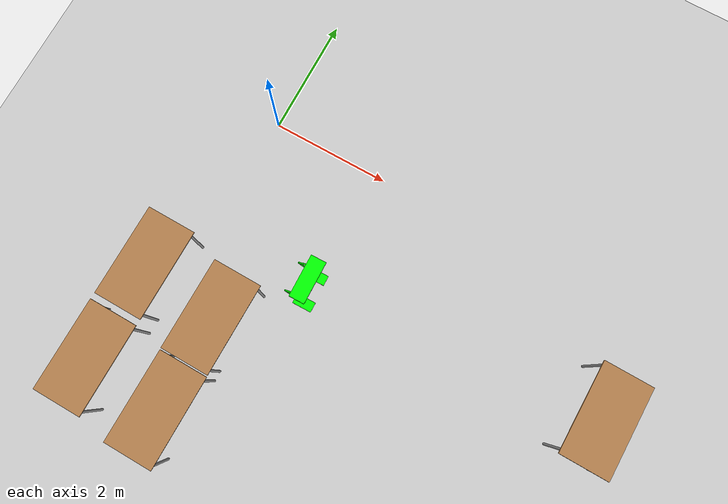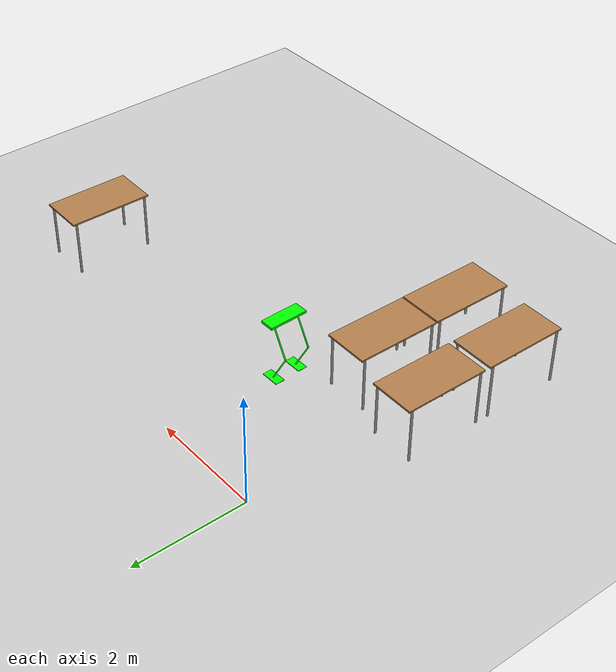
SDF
<sdf version="1.7">
 <world name="default">
  <model name="table_clone_0">
   <static>1</static>
   <link name="link">
    <collision name="surface">
     <pose>0 0 1 0 -0 0</pose>
     <geometry><box><size>1.5 0.8 0.03</size></box></geometry>
     <surface><friction><ode><mu>0.6</mu><mu2>0.6</mu2></ode></friction></surface>
    </collision>
    <visual name="visual1">
     <pose>0 0 1 0 -0 0</pose>
     <geometry><box><size>1.5 0.8 0.03</size></box></geometry>
     <material>
      <script><uri>file://media/materials/scripts/gazebo.material</uri><name>Gazebo/Wood</name></script>
     </material>
    </visual>
    <collision name="front_left_leg">
     <pose>0.68 0.38 0.5 0 -0 0</pose>
     <geometry><cylinder><radius>0.02</radius><length>1</length></cylinder></geometry>
    </collision>
    <visual name="front_left_leg">
     <pose>0.68 0.38 0.5 0 -0 0</pose>
     <geometry><cylinder><radius>0.02</radius><length>1</length></cylinder></geometry>
     <material>
      <script><uri>file://media/materials/scripts/gazebo.material</uri><name>Gazebo/Grey</name></script>
     </material>
    </visual>
    <collision name="front_right_leg">
     <pose>0.68 -0.38 0.5 0 -0 0</pose>
     <geometry><cylinder><radius>0.02</radius><length>1</length></cylinder></geometry>
    </collision>
    <visual name="front_right_leg">
     <pose>0.68 -0.38 0.5 0 -0 0</pose>
     <geometry><cylinder><radius>0.02</radius><length>1</length></cylinder></geometry>
     <material>
      <script><uri>file://media/materials/scripts/gazebo.material</uri><name>Gazebo/Grey</name></script>
     </material>
    </visual>
    <collision name="back_right_leg">
     <pose>-0.68 -0.38 0.5 0 -0 0</pose>
     <geometry><cylinder><radius>0.02</radius><length>1</length></cylinder></geometry>
    </collision>
    <visual name="back_right_leg">
     <pose>-0.68 -0.38 0.5 0 -0 0</pose>
     <geometry><cylinder><radius>0.02</radius><length>1</length></cylinder></geometry>
     <material>
      <script><uri>file://media/materials/scripts/gazebo.material</uri><name>Gazebo/Grey</name></script>
     </material>
    </visual>
    <collision name="back_left_leg">
     <pose>-0.68 0.38 0.5 0 -0 0</pose>
     <geometry><cylinder><radius>0.02</radius><length>1</length></cylinder></geometry>
    </collision>
    <visual name="back_left_leg">
     <pose>-0.68 0.38 0.5 0 -0 0</pose>
     <geometry><cylinder><radius>0.02</radius><length>1</length></cylinder></geometry>
     <material>
      <script><uri>file://media/materials/scripts/gazebo.material</uri><name>Gazebo/Grey</name></script>
     </material>
    </visual>
   </link>
   <pose>-0.472288 -4.67796 0 0 0 -1.58492</pose>
  </model>
  <model name="table_clone_1">
   <static>1</static>
   <link name="link">
    <collision name="surface">
     <pose>0 0 1 0 -0 0</pose>
     <geometry><box><size>1.5 0.8 0.03</size></box></geometry>
     <surface><friction><ode><mu>0.6</mu><mu2>0.6</mu2></ode></friction></surface>
    </collision>
    <visual name="visual1">
     <pose>0 0 1 0 -0 0</pose>
     <geometry><box><size>1.5 0.8 0.03</size></box></geometry>
     <material>
      <script><uri>file://media/materials/scripts/gazebo.material</uri><name>Gazebo/Wood</name></script>
     </material>
    </visual>
    <collision name="front_left_leg">
     <pose>0.68 0.38 0.5 0 -0 0</pose>
     <geometry><cylinder><radius>0.02</radius><length>1</length></cylinder></geometry>
    </collision>
    <visual name="front_left_leg">
     <pose>0.68 0.38 0.5 0 -0 0</pose>
     <geometry><cylinder><radius>0.02</radius><length>1</length></cylinder></geometry>
     <material>
      <script><uri>file://media/materials/scripts/gazebo.material</uri><name>Gazebo/Grey</name></script>
     </material>
    </visual>
    <collision name="front_right_leg">
     <pose>0.68 -0.38 0.5 0 -0 0</pose>
     <geometry><cylinder><radius>0.02</radius><length>1</length></cylinder></geometry>
    </collision>
    <visual name="front_right_leg">
     <pose>0.68 -0.38 0.5 0 -0 0</pose>
     <geometry><cylinder><radius>0.02</radius><length>1</length></cylinder></geometry>
     <material>
      <script><uri>file://media/materials/scripts/gazebo.material</uri><name>Gazebo/Grey</name></script>
     </material>
    </visual>
    <collision name="back_right_leg">
     <pose>-0.68 -0.38 0.5 0 -0 0</pose>
     <geometry><cylinder><radius>0.02</radius><length>1</length></cylinder></geometry>
    </collision>
    <visual name="back_right_leg">
     <pose>-0.68 -0.38 0.5 0 -0 0</pose>
     <geometry><cylinder><radius>0.02</radius><length>1</length></cylinder></geometry>
     <material>
      <script><uri>file://media/materials/scripts/gazebo.material</uri><name>Gazebo/Grey</name></script>
     </material>
    </visual>
    <collision name="back_left_leg">
     <pose>-0.68 0.38 0.5 0 -0 0</pose>
     <geometry><cylinder><radius>0.02</radius><length>1</length></cylinder></geometry>
    </collision>
    <visual name="back_left_leg">
     <pose>-0.68 0.38 0.5 0 -0 0</pose>
     <geometry><cylinder><radius>0.02</radius><length>1</length></cylinder></geometry>
     <material>
      <script><uri>file://media/materials/scripts/gazebo.material</uri><name>Gazebo/Grey</name></script>
     </material>
    </visual>
   </link>
   <pose>-0.444625 -3.07564 0 0 0 -1.58492</pose>
  </model>
  <model name="table_clone_2">
   <static>1</static>
   <link name="link">
    <collision name="surface">
     <pose>0 0 1 0 -0 0</pose>
     <geometry><box><size>1.5 0.8 0.03</size></box></geometry>
     <surface><friction><ode><mu>0.6</mu><mu2>0.6</mu2></ode></friction></surface>
    </collision>
    <visual name="visual1">
     <pose>0 0 1 0 -0 0</pose>
     <geometry><box><size>1.5 0.8 0.03</size></box></geometry>
     <material>
      <script><uri>file://media/materials/scripts/gazebo.material</uri><name>Gazebo/Wood</name></script>
     </material>
    </visual>
    <collision name="front_left_leg">
     <pose>0.68 0.38 0.5 0 -0 0</pose>
     <geometry><cylinder><radius>0.02</radius><length>1</length></cylinder></geometry>
    </collision>
    <visual name="front_left_leg">
     <pose>0.68 0.38 0.5 0 -0 0</pose>
     <geometry><cylinder><radius>0.02</radius><length>1</length></cylinder></geometry>
     <material>
      <script><uri>file://media/materials/scripts/gazebo.material</uri><name>Gazebo/Grey</name></script>
     </material>
    </visual>
    <collision name="front_right_leg">
     <pose>0.68 -0.38 0.5 0 -0 0</pose>
     <geometry><cylinder><radius>0.02</radius><length>1</length></cylinder></geometry>
    </collision>
    <visual name="front_right_leg">
     <pose>0.68 -0.38 0.5 0 -0 0</pose>
     <geometry><cylinder><radius>0.02</radius><length>1</length></cylinder></geometry>
     <material>
      <script><uri>file://media/materials/scripts/gazebo.material</uri><name>Gazebo/Grey</name></script>
     </material>
    </visual>
    <collision name="back_right_leg">
     <pose>-0.68 -0.38 0.5 0 -0 0</pose>
     <geometry><cylinder><radius>0.02</radius><length>1</length></cylinder></geometry>
    </collision>
    <visual name="back_right_leg">
     <pose>-0.68 -0.38 0.5 0 -0 0</pose>
     <geometry><cylinder><radius>0.02</radius><length>1</length></cylinder></geometry>
     <material>
      <script><uri>file://media/materials/scripts/gazebo.material</uri><name>Gazebo/Grey</name></script>
     </material>
    </visual>
    <collision name="back_left_leg">
     <pose>-0.68 0.38 0.5 0 -0 0</pose>
     <geometry><cylinder><radius>0.02</radius><length>1</length></cylinder></geometry>
    </collision>
    <visual name="back_left_leg">
     <pose>-0.68 0.38 0.5 0 -0 0</pose>
     <geometry><cylinder><radius>0.02</radius><length>1</length></cylinder></geometry>
     <material>
      <script><uri>file://media/materials/scripts/gazebo.material</uri><name>Gazebo/Grey</name></script>
     </material>
    </visual>
   </link>
   <pose>0.815848 -4.81466 0 0 0 -1.58492</pose>
  </model>
  <model name="table_clone_3">
   <static>1</static>
   <link name="link">
    <collision name="surface">
     <pose>0 0 1 0 -0 0</pose>
     <geometry><box><size>1.5 0.8 0.03</size></box></geometry>
     <surface><friction><ode><mu>0.6</mu><mu2>0.6</mu2></ode></friction></surface>
    </collision>
    <visual name="visual1">
     <pose>0 0 1 0 -0 0</pose>
     <geometry><box><size>1.5 0.8 0.03</size></box></geometry>
     <material>
      <script><uri>file://media/materials/scripts/gazebo.material</uri><name>Gazebo/Wood</name></script>
     </material>
    </visual>
    <collision name="front_left_leg">
     <pose>0.68 0.38 0.5 0 -0 0</pose>
     <geometry><cylinder><radius>0.02</radius><length>1</length></cylinder></geometry>
    </collision>
    <visual name="front_left_leg">
     <pose>0.68 0.38 0.5 0 -0 0</pose>
     <geometry><cylinder><radius>0.02</radius><length>1</length></cylinder></geometry>
     <material>
      <script><uri>file://media/materials/scripts/gazebo.material</uri><name>Gazebo/Grey</name></script>
     </material>
    </visual>
    <collision name="front_right_leg">
     <pose>0.68 -0.38 0.5 0 -0 0</pose>
     <geometry><cylinder><radius>0.02</radius><length>1</length></cylinder></geometry>
    </collision>
    <visual name="front_right_leg">
     <pose>0.68 -0.38 0.5 0 -0 0</pose>
     <geometry><cylinder><radius>0.02</radius><length>1</length></cylinder></geometry>
     <material>
      <script><uri>file://media/materials/scripts/gazebo.material</uri><name>Gazebo/Grey</name></script>
     </material>
    </visual>
    <collision name="back_right_leg">
     <pose>-0.68 -0.38 0.5 0 -0 0</pose>
     <geometry><cylinder><radius>0.02</radius><length>1</length></cylinder></geometry>
    </collision>
    <visual name="back_right_leg">
     <pose>-0.68 -0.38 0.5 0 -0 0</pose>
     <geometry><cylinder><radius>0.02</radius><length>1</length></cylinder></geometry>
     <material>
      <script><uri>file://media/materials/scripts/gazebo.material</uri><name>Gazebo/Grey</name></script>
     </material>
    </visual>
    <collision name="back_left_leg">
     <pose>-0.68 0.38 0.5 0 -0 0</pose>
     <geometry><cylinder><radius>0.02</radius><length>1</length></cylinder></geometry>
    </collision>
    <visual name="back_left_leg">
     <pose>-0.68 0.38 0.5 0 -0 0</pose>
     <geometry><cylinder><radius>0.02</radius><length>1</length></cylinder></geometry>
     <material>
      <script><uri>file://media/materials/scripts/gazebo.material</uri><name>Gazebo/Grey</name></script>
     </material>
    </visual>
   </link>
   <pose>0.832802 -3.28848 0 0 0 -1.58492</pose>
  </model>
  <model name="table_clone_3_clone">
   <static>1</static>
   <link name="link">
    <collision name="surface">
     <pose>0 0 1 0 -0 0</pose>
     <geometry><box><size>1.5 0.8 0.03</size></box></geometry>
     <surface><friction><ode><mu>0.6</mu><mu2>0.6</mu2></ode></friction></surface>
    </collision>
    <visual name="visual1">
     <pose>0 0 1 0 -0 0</pose>
     <geometry><box><size>1.5 0.8 0.03</size></box></geometry>
     <material>
      <script><uri>file://media/materials/scripts/gazebo.material</uri><name>Gazebo/Wood</name></script>
     </material>
    </visual>
    <collision name="front_left_leg">
     <pose>0.68 0.38 0.5 0 -0 0</pose>
     <geometry><cylinder><radius>0.02</radius><length>1</length></cylinder></geometry>
    </collision>
    <visual name="front_left_leg">
     <pose>0.68 0.38 0.5 0 -0 0</pose>
     <geometry><cylinder><radius>0.02</radius><length>1</length></cylinder></geometry>
     <material>
      <script><uri>file://media/materials/scripts/gazebo.material</uri><name>Gazebo/Grey</name></script>
     </material>
    </visual>
    <collision name="front_right_leg">
     <pose>0.68 -0.38 0.5 0 -0 0</pose>
     <geometry><cylinder><radius>0.02</radius><length>1</length></cylinder></geometry>
    </collision>
    <visual name="front_right_leg">
     <pose>0.68 -0.38 0.5 0 -0 0</pose>
     <geometry><cylinder><radius>0.02</radius><length>1</length></cylinder></geometry>
     <material>
      <script><uri>file://media/materials/scripts/gazebo.material</uri><name>Gazebo/Grey</name></script>
     </material>
    </visual>
    <collision name="back_right_leg">
     <pose>-0.68 -0.38 0.5 0 -0 0</pose>
     <geometry><cylinder><radius>0.02</radius><length>1</length></cylinder></geometry>
    </collision>
    <visual name="back_right_leg">
     <pose>-0.68 -0.38 0.5 0 -0 0</pose>
     <geometry><cylinder><radius>0.02</radius><length>1</length></cylinder></geometry>
     <material>
      <script><uri>file://media/materials/scripts/gazebo.material</uri><name>Gazebo/Grey</name></script>
     </material>
    </visual>
    <collision name="back_left_leg">
     <pose>-0.68 0.38 0.5 0 -0 0</pose>
     <geometry><cylinder><radius>0.02</radius><length>1</length></cylinder></geometry>
    </collision>
    <visual name="back_left_leg">
     <pose>-0.68 0.38 0.5 0 -0 0</pose>
     <geometry><cylinder><radius>0.02</radius><length>1</length></cylinder></geometry>
     <material>
      <script><uri>file://media/materials/scripts/gazebo.material</uri><name>Gazebo/Grey</name></script>
     </material>
    </visual>
   </link>
   <pose>6.55035 -1.82264 0 0 0 -1.58492</pose>
  </model>
  <model name="ground_plane">
   <static>1</static>
   <link name="link">
    <collision name="collision">
     <geometry><plane><normal>0 0 1</normal><size>100 100</size></plane></geometry>
     <surface>
      <contact><collide_bitmask>65535</collide_bitmask></contact>
      <friction><ode><mu>100</mu><mu2>50</mu2></ode></friction>
     </surface>
    </collision>
    <visual name="visual">
     <cast_shadows>0</cast_shadows>
     <geometry><plane><normal>0 0 1</normal><size>100 100</size></plane></geometry>
     <material>
      <script><uri>file://media/materials/scripts/gazebo.material</uri><name>Gazebo/Grey</name></script>
     </material>
    </visual>
   </link>
   <pose>-4.07315 -7.5209 0 0 -0 0</pose>
  </model>
  <model name="green-robot_0">
   <model name="green-robot">
    <link name="link_0">
     <inertial>
      <mass>0.00693394</mass>
      <inertia>
       <ixx>0.00027257</ixx>
       <ixy>0</ixy>
       <ixz>0</ixz>
       <iyy>3.743e-05</iyy>
       <iyz>0</iyz>
       <izz>0.00030813</izz>
      </inertia>
     </inertial>
     <pose>-0.000636 0.001622 1.21471 0 -0 0</pose>
     <gravity>0</gravity>
     <visual name="visual">
      <geometry><box><size>0.251315 0.685637 0.040238</size></box></geometry>
      <material>
       <lighting>1</lighting>
       <script><uri>file://media/materials/scripts/gazebo.material</uri><name>Gazebo/Grey</name></script>
       <shader type="pixel"><normal_map>__default__</normal_map></shader>
       <ambient>0 1 0 1</ambient>
       <diffuse>0 1 0 1</diffuse>
       <specular>0 1 0 1</specular>
       <emissive>0 0 0 1</emissive>
      </material>
     </visual>
     <collision name="collision">
      <geometry><box><size>0.251315 0.685637 0.040238</size></box></geometry>
      <surface>
       <friction>
        <ode><mu>1</mu><mu2>1</mu2><fdir1>0 0 0</fdir1><slip1>0</slip1><slip2>0</slip2></ode>
        <torsional>
         <coefficient>1</coefficient>
         <patch_radius>0</patch_radius>
         <surface_radius>0</surface_radius>
         <use_patch_radius>1</use_patch_radius>
         <ode><slip>0</slip></ode>
        </torsional>
       </friction>
       <bounce><restitution_coefficient>0</restitution_coefficient><threshold>1e+06</threshold></bounce>
       <contact>
        <collide_without_contact>0</collide_without_contact>
        <collide_without_contact_bitmask>1</collide_without_contact_bitmask>
        <collide_bitmask>1</collide_bitmask>
        <ode>
         <soft_cfm>0</soft_cfm>
         <soft_erp>0.2</soft_erp>
         <kp>1e+13</kp>
         <kd>1</kd>
         <max_vel>0.01</max_vel>
         <min_depth>0</min_depth>
        </ode>
        <bullet>
         <split_impulse>1</split_impulse>
         <split_impulse_penetration_threshold>-0.01</split_impulse_penetration_threshold>
         <soft_cfm>0</soft_cfm>
         <soft_erp>0.2</soft_erp>
         <kp>1e+13</kp>
         <kd>1</kd>
        </bullet>
       </contact>
      </surface>
     </collision>
    </link>
    <link name="link_0_0_clone">
     <inertial>
      <mass>0.000350394</mass>
      <inertia>
       <ixx>1.10999e-05</ixx>
       <ixy>0</ixy>
       <ixz>0</ixz>
       <iyy>1.10999e-05</iyy>
       <iyz>0</iyz>
       <izz>2.49424e-08</izz>
      </inertia>
     </inertial>
     <pose>0.148869 -0.215496 0.920825 0 -0.497724 0</pose>
     <visual name="visual_0">
      <geometry><cylinder><radius>0.0119318</radius><length>0.616209</length></cylinder></geometry>
      <material>
       <lighting>1</lighting>
       <script><uri>file://media/materials/scripts/gazebo.material</uri><name>Gazebo/Grey</name></script>
       <shader type="pixel"><normal_map>__default__</normal_map></shader>
       <ambient>0 1 0 1</ambient>
       <diffuse>0 1 0 1</diffuse>
       <specular>0 1 0 1</specular>
       <emissive>0 0 0 1</emissive>
      </material>
     </visual>
     <collision name="collision">
      <geometry><cylinder><radius>0.011932</radius><length>0.616209</length></cylinder></geometry>
      <surface>
       <friction>
        <ode><mu>1</mu><mu2>1</mu2><fdir1>0 0 0</fdir1><slip1>0</slip1><slip2>0</slip2></ode>
        <torsional>
         <coefficient>1</coefficient>
         <patch_radius>0</patch_radius>
         <surface_radius>0</surface_radius>
         <use_patch_radius>1</use_patch_radius>
         <ode><slip>0</slip></ode>
        </torsional>
       </friction>
       <bounce><restitution_coefficient>0</restitution_coefficient><threshold>1e+06</threshold></bounce>
       <contact>
        <collide_without_contact>0</collide_without_contact>
        <collide_without_contact_bitmask>1</collide_without_contact_bitmask>
        <collide_bitmask>1</collide_bitmask>
        <ode>
         <soft_cfm>0</soft_cfm>
         <soft_erp>0.2</soft_erp>
         <kp>1e+13</kp>
         <kd>1</kd>
         <max_vel>0.01</max_vel>
         <min_depth>0</min_depth>
        </ode>
        <bullet>
         <split_impulse>1</split_impulse>
         <split_impulse_penetration_threshold>-0.01</split_impulse_penetration_threshold>
         <soft_cfm>0</soft_cfm>
         <soft_erp>0.2</soft_erp>
         <kp>1e+13</kp>
         <kd>1</kd>
        </bullet>
       </contact>
      </surface>
     </collision>
    </link>
    <link name="link_0_0_clone_clone">
     <inertial>
      <mass>0.000350394</mass>
      <inertia>
       <ixx>1.10999e-05</ixx>
       <ixy>0</ixy>
       <ixz>0</ixz>
       <iyy>1.10999e-05</iyy>
       <iyz>0</iyz>
       <izz>2.49424e-08</izz>
      </inertia>
     </inertial>
     <pose>0.128825 0.256686 0.921798 0 -0.497724 0</pose>
     <visual name="visual_0">
      <geometry><cylinder><radius>0.0119318</radius><length>0.616209</length></cylinder></geometry>
      <material>
       <lighting>1</lighting>
       <script><uri>file://media/materials/scripts/gazebo.material</uri><name>Gazebo/Grey</name></script>
       <shader type="pixel"><normal_map>__default__</normal_map></shader>
       <ambient>0 1 0 1</ambient>
       <diffuse>0 1 0 1</diffuse>
       <specular>0 1 0 1</specular>
       <emissive>0 0 0 1</emissive>
      </material>
     </visual>
     <collision name="collision">
      <geometry><cylinder><radius>0.011932</radius><length>0.616209</length></cylinder></geometry>
      <surface>
       <friction>
        <ode><mu>1</mu><mu2>1</mu2><fdir1>0 0 0</fdir1><slip1>0</slip1><slip2>0</slip2></ode>
        <torsional>
         <coefficient>1</coefficient>
         <patch_radius>0</patch_radius>
         <surface_radius>0</surface_radius>
         <use_patch_radius>1</use_patch_radius>
         <ode><slip>0</slip></ode>
        </torsional>
       </friction>
       <bounce><restitution_coefficient>0</restitution_coefficient><threshold>1e+06</threshold></bounce>
       <contact>
        <collide_without_contact>0</collide_without_contact>
        <collide_without_contact_bitmask>1</collide_without_contact_bitmask>
        <collide_bitmask>1</collide_bitmask>
        <ode>
         <soft_cfm>0</soft_cfm>
         <soft_erp>0.2</soft_erp>
         <kp>1e+13</kp>
         <kd>1</kd>
         <max_vel>0.01</max_vel>
         <min_depth>0</min_depth>
        </ode>
        <bullet>
         <split_impulse>1</split_impulse>
         <split_impulse_penetration_threshold>-0.01</split_impulse_penetration_threshold>
         <soft_cfm>0</soft_cfm>
         <soft_erp>0.2</soft_erp>
         <kp>1e+13</kp>
         <kd>1</kd>
        </bullet>
       </contact>
      </surface>
     </collision>
    </link>
    <link name="link_0_0_clone_clone_2">
     <inertial>
      <mass>0.000350394</mass>
      <inertia>
       <ixx>1.10999e-05</ixx>
       <ixy>0</ixy>
       <ixz>0</ixz>
       <iyy>1.10999e-05</iyy>
       <iyz>0</iyz>
       <izz>2.49424e-08</izz>
      </inertia>
     </inertial>
     <pose>0.152447 -0.215495 0.389072 0 0.511281 0</pose>
     <visual name="visual_0">
      <geometry><cylinder><radius>0.0119318</radius><length>0.616209</length></cylinder></geometry>
      <material>
       <lighting>1</lighting>
       <script><uri>file://media/materials/scripts/gazebo.material</uri><name>Gazebo/Grey</name></script>
       <shader type="pixel"><normal_map>__default__</normal_map></shader>
       <ambient>0 1 0 1</ambient>
       <diffuse>0 1 0 1</diffuse>
       <specular>0 1 0 1</specular>
       <emissive>0 0 0 1</emissive>
      </material>
     </visual>
     <collision name="collision">
      <geometry><cylinder><radius>0.011932</radius><length>0.616209</length></cylinder></geometry>
      <surface>
       <friction>
        <ode><mu>1</mu><mu2>1</mu2><fdir1>0 0 0</fdir1><slip1>0</slip1><slip2>0</slip2></ode>
        <torsional>
         <coefficient>1</coefficient>
         <patch_radius>0</patch_radius>
         <surface_radius>0</surface_radius>
         <use_patch_radius>1</use_patch_radius>
         <ode><slip>0</slip></ode>
        </torsional>
       </friction>
       <bounce><restitution_coefficient>0</restitution_coefficient><threshold>1e+06</threshold></bounce>
       <contact>
        <collide_without_contact>0</collide_without_contact>
        <collide_without_contact_bitmask>1</collide_without_contact_bitmask>
        <collide_bitmask>1</collide_bitmask>
        <ode>
         <soft_cfm>0</soft_cfm>
         <soft_erp>0.2</soft_erp>
         <kp>1e+13</kp>
         <kd>1</kd>
         <max_vel>0.01</max_vel>
         <min_depth>0</min_depth>
        </ode>
        <bullet>
         <split_impulse>1</split_impulse>
         <split_impulse_penetration_threshold>-0.01</split_impulse_penetration_threshold>
         <soft_cfm>0</soft_cfm>
         <soft_erp>0.2</soft_erp>
         <kp>1e+13</kp>
         <kd>1</kd>
        </bullet>
       </contact>
      </surface>
     </collision>
    </link>
    <link name="link_0_0_clone_clone_2_clone">
     <inertial>
      <mass>0.000350394</mass>
      <inertia>
       <ixx>1.10999e-05</ixx>
       <ixy>0</ixy>
       <ixz>0</ixz>
       <iyy>1.10999e-05</iyy>
       <iyz>0</iyz>
       <izz>2.49424e-08</izz>
      </inertia>
     </inertial>
     <pose>0.132403 0.256686 0.389072 0 0.511281 0</pose>
     <visual name="visual_0">
      <geometry><cylinder><radius>0.0119318</radius><length>0.616209</length></cylinder></geometry>
      <material>
       <lighting>1</lighting>
       <script><uri>file://media/materials/scripts/gazebo.material</uri><name>Gazebo/Grey</name></script>
       <shader type="pixel"><normal_map>__default__</normal_map></shader>
       <ambient>0 1 0 1</ambient>
       <diffuse>0 1 0 1</diffuse>
       <specular>0 1 0 1</specular>
       <emissive>0 0 0 1</emissive>
      </material>
     </visual>
     <collision name="collision">
      <geometry><cylinder><radius>0.011932</radius><length>0.616209</length></cylinder></geometry>
      <surface>
       <friction>
        <ode><mu>1</mu><mu2>1</mu2><fdir1>0 0 0</fdir1><slip1>0</slip1><slip2>0</slip2></ode>
        <torsional>
         <coefficient>1</coefficient>
         <patch_radius>0</patch_radius>
         <surface_radius>0</surface_radius>
         <use_patch_radius>1</use_patch_radius>
         <ode><slip>0</slip></ode>
        </torsional>
       </friction>
       <bounce><restitution_coefficient>0</restitution_coefficient><threshold>1e+06</threshold></bounce>
       <contact>
        <collide_without_contact>0</collide_without_contact>
        <collide_without_contact_bitmask>1</collide_without_contact_bitmask>
        <collide_bitmask>1</collide_bitmask>
        <ode>
         <soft_cfm>0</soft_cfm>
         <soft_erp>0.2</soft_erp>
         <kp>1e+13</kp>
         <kd>1</kd>
         <max_vel>0.01</max_vel>
         <min_depth>0</min_depth>
        </ode>
        <bullet>
         <split_impulse>1</split_impulse>
         <split_impulse_penetration_threshold>-0.01</split_impulse_penetration_threshold>
         <soft_cfm>0</soft_cfm>
         <soft_erp>0.2</soft_erp>
         <kp>1e+13</kp>
         <kd>1</kd>
        </bullet>
       </contact>
      </surface>
     </collision>
    </link>
    <link name="link_0_clone">
     <inertial>
      <mass>0.000508908</mass>
      <inertia>
       <ixx>4.59216e-06</ixx>
       <ixy>0</ixy>
       <ixz>0</ixz>
       <iyy>1.22054e-06</iyy>
       <iyz>0</iyz>
       <izz>5.80563e-06</izz>
      </inertia>
     </inertial>
     <pose>0.003853 -0.215495 0.119095 0 0 -1.57803</pose>
     <visual name="visual">
      <geometry><box><size>0.169401 0.328937 0.009131</size></box></geometry>
      <material>
       <lighting>1</lighting>
       <script><uri>file://media/materials/scripts/gazebo.material</uri><name>Gazebo/Grey</name></script>
       <shader type="pixel"><normal_map>__default__</normal_map></shader>
       <ambient>0 1 0 1</ambient>
       <diffuse>0 1 0 1</diffuse>
       <specular>0 1 0 1</specular>
       <emissive>0 0 0 1</emissive>
      </material>
     </visual>
     <collision name="collision">
      <geometry><box><size>0.169401 0.328937 0.009131</size></box></geometry>
      <surface>
       <friction>
        <ode><mu>1</mu><mu2>1</mu2><fdir1>0 0 0</fdir1><slip1>0</slip1><slip2>0</slip2></ode>
        <torsional>
         <coefficient>1</coefficient>
         <patch_radius>0</patch_radius>
         <surface_radius>0</surface_radius>
         <use_patch_radius>1</use_patch_radius>
         <ode><slip>0</slip></ode>
        </torsional>
       </friction>
       <bounce><restitution_coefficient>0</restitution_coefficient><threshold>1e+06</threshold></bounce>
       <contact>
        <collide_without_contact>0</collide_without_contact>
        <collide_without_contact_bitmask>1</collide_without_contact_bitmask>
        <collide_bitmask>1</collide_bitmask>
        <ode>
         <soft_cfm>0</soft_cfm>
         <soft_erp>0.2</soft_erp>
         <kp>1e+13</kp>
         <kd>1</kd>
         <max_vel>0.01</max_vel>
         <min_depth>0</min_depth>
        </ode>
        <bullet>
         <split_impulse>1</split_impulse>
         <split_impulse_penetration_threshold>-0.01</split_impulse_penetration_threshold>
         <soft_cfm>0</soft_cfm>
         <soft_erp>0.2</soft_erp>
         <kp>1e+13</kp>
         <kd>1</kd>
        </bullet>
       </contact>
      </surface>
     </collision>
    </link>
    <link name="link_0_clone_clone">
     <inertial>
      <mass>0.000508908</mass>
      <inertia>
       <ixx>4.59216e-06</ixx>
       <ixy>0</ixy>
       <ixz>0</ixz>
       <iyy>1.22054e-06</iyy>
       <iyz>0</iyz>
       <izz>5.80563e-06</izz>
      </inertia>
     </inertial>
     <pose>-0.01593 0.256685 0.119095 0 0 -1.57803</pose>
     <visual name="visual">
      <geometry><box><size>0.169401 0.328937 0.009131</size></box></geometry>
      <material>
       <lighting>1</lighting>
       <script><uri>file://media/materials/scripts/gazebo.material</uri><name>Gazebo/Grey</name></script>
       <shader type="pixel"><normal_map>__default__</normal_map></shader>
       <ambient>0 1 0 1</ambient>
       <diffuse>0 1 0 1</diffuse>
       <specular>0 1 0 1</specular>
       <emissive>0 0 0 1</emissive>
      </material>
     </visual>
     <collision name="collision">
      <geometry><box><size>0.169401 0.328937 0.009131</size></box></geometry>
      <surface>
       <friction>
        <ode><mu>1</mu><mu2>1</mu2><fdir1>0 0 0</fdir1><slip1>0</slip1><slip2>0</slip2></ode>
        <torsional>
         <coefficient>1</coefficient>
         <patch_radius>0</patch_radius>
         <surface_radius>0</surface_radius>
         <use_patch_radius>1</use_patch_radius>
         <ode><slip>0</slip></ode>
        </torsional>
       </friction>
       <bounce><restitution_coefficient>0</restitution_coefficient><threshold>1e+06</threshold></bounce>
       <contact>
        <collide_without_contact>0</collide_without_contact>
        <collide_without_contact_bitmask>1</collide_without_contact_bitmask>
        <collide_bitmask>1</collide_bitmask>
        <ode>
         <soft_cfm>0</soft_cfm>
         <soft_erp>0.2</soft_erp>
         <kp>1e+13</kp>
         <kd>1</kd>
         <max_vel>0.01</max_vel>
         <min_depth>0</min_depth>
        </ode>
        <bullet>
         <split_impulse>1</split_impulse>
         <split_impulse_penetration_threshold>-0.01</split_impulse_penetration_threshold>
         <soft_cfm>0</soft_cfm>
         <soft_erp>0.2</soft_erp>
         <kp>1e+13</kp>
         <kd>1</kd>
        </bullet>
       </contact>
      </surface>
     </collision>
    </link>
    <joint name="link_0_0_clone_JOINT_6" type="fixed">
     <parent>link_0_0_clone</parent>
     <child>link_0_0_clone_clone_2</child>
     <physics>
      <ode><limit><cfm>0</cfm><erp>0.2</erp></limit><suspension><cfm>0</cfm><erp>0.2</erp></suspension></ode>
     </physics>
    </joint>
    <joint name="link_0_0_clone_clone_2_JOINT_10" type="fixed">
     <parent>link_0_0_clone_clone_2</parent>
     <child>link_0_clone</child>
     <physics>
      <ode><limit><cfm>0</cfm><erp>0.2</erp></limit><suspension><cfm>0</cfm><erp>0.2</erp></suspension></ode>
     </physics>
    </joint>
    <joint name="link_0_0_clone_clone_2_JOINT_11" type="fixed">
     <parent>link_0_0_clone_clone_2</parent>
     <child>link_0_clone</child>
     <physics>
      <ode><limit><cfm>0</cfm><erp>0.2</erp></limit><suspension><cfm>0</cfm><erp>0.2</erp></suspension></ode>
     </physics>
    </joint>
    <joint name="link_0_0_clone_clone_2_clone_JOINT_12" type="fixed">
     <parent>link_0_0_clone_clone_2_clone</parent>
     <child>link_0_clone_clone</child>
     <physics>
      <ode><limit><cfm>0</cfm><erp>0.2</erp></limit><suspension><cfm>0</cfm><erp>0.2</erp></suspension></ode>
     </physics>
    </joint>
    <joint name="link_0_0_clone_clone_JOINT_8" type="fixed">
     <parent>link_0_0_clone_clone</parent>
     <child>link_0_0_clone_clone_2_clone</child>
     <physics>
      <ode><limit><cfm>0</cfm><erp>0.2</erp></limit><suspension><cfm>0</cfm><erp>0.2</erp></suspension></ode>
     </physics>
    </joint>
    <joint name="link_0_JOINT_1" type="fixed">
     <parent>link_0</parent>
     <child>link_0_0_clone</child>
     <physics>
      <ode><limit><cfm>0</cfm><erp>0.2</erp></limit><suspension><cfm>0</cfm><erp>0.2</erp></suspension></ode>
     </physics>
    </joint>
    <joint name="link_0_JOINT_4" type="fixed">
     <parent>link_0</parent>
     <child>link_0_0_clone_clone</child>
     <physics>
      <ode><limit><cfm>0</cfm><erp>0.2</erp></limit><suspension><cfm>0</cfm><erp>0.2</erp></suspension></ode>
     </physics>
    </joint>
    <static>0</static>
    <pose>-4e-06 0 0 0 -0 0</pose>
   </model>
   <joint name="link_0_0_clone_JOINT_2" type="fixed">
    <parent>green-robot::link_0_0_clone</parent>
    <child>green-robot::link_0_0_clone_clone</child>
    <physics>
     <ode><limit><cfm>0</cfm><erp>0.2</erp></limit><suspension><cfm>0</cfm><erp>0.2</erp></suspension></ode>
    </physics>
   </joint>
   <joint name="link_0_0_clone_clone_2_JOINT_3" type="fixed">
    <parent>green-robot::link_0_0_clone_clone_2</parent>
    <child>green-robot::link_0_0_clone_clone_2_clone_LINK_FRAME_VISUAL___X_AXIS</child>
    <physics>
     <ode><limit><cfm>0</cfm><erp>0.2</erp></limit><suspension><cfm>0</cfm><erp>0.2</erp></suspension></ode>
    </physics>
   </joint>
   <joint name="link_0_clone_JOINT_4" type="fixed">
    <parent>green-robot::link_0_clone</parent>
    <child>green-robot::link_0_clone_clone</child>
    <physics>
     <ode><limit><cfm>0</cfm><erp>0.2</erp></limit><suspension><cfm>0</cfm><erp>0.2</erp></suspension></ode>
    </physics>
   </joint>
   <static>1</static>
   <pose>1.8242 -2.14106 -0.014536 5.7e-05 6e-06 -3.12552</pose>
  </model>
 </world>
</sdf>
